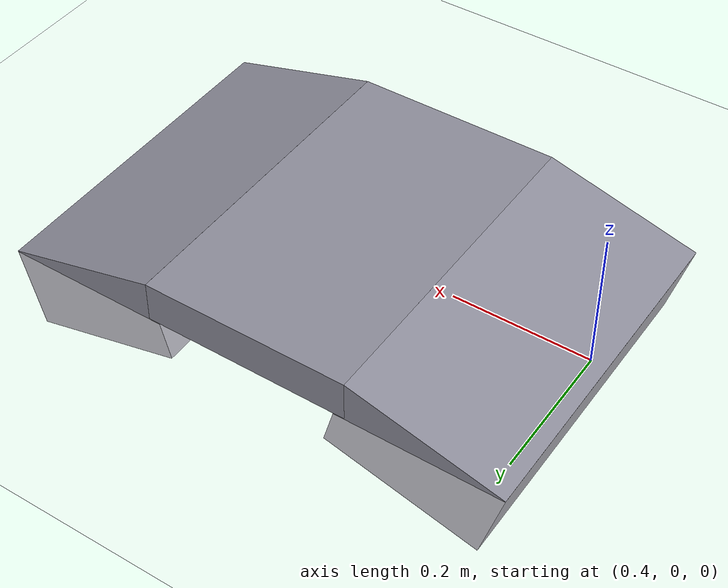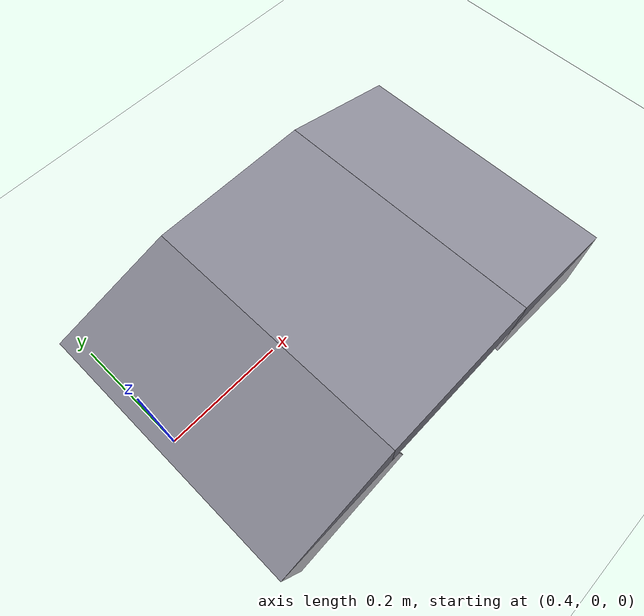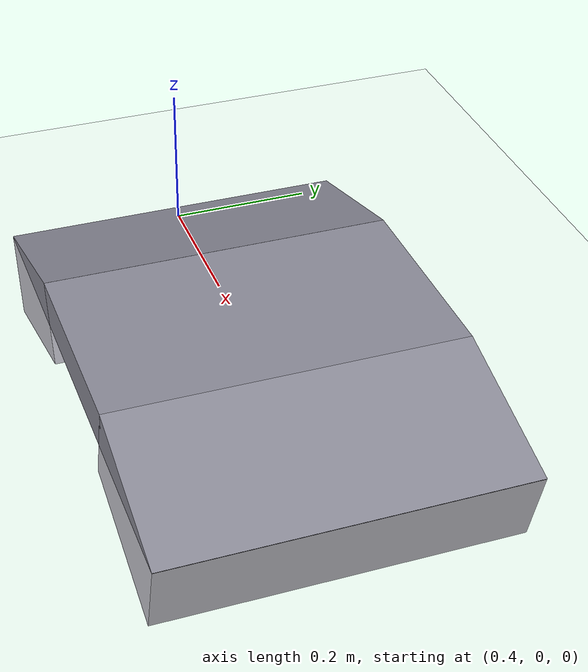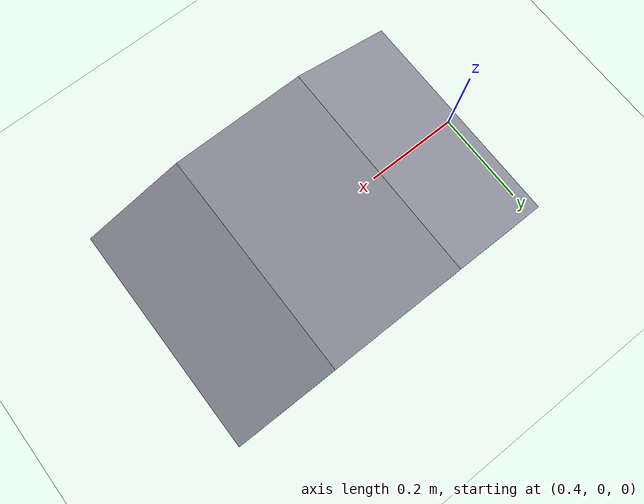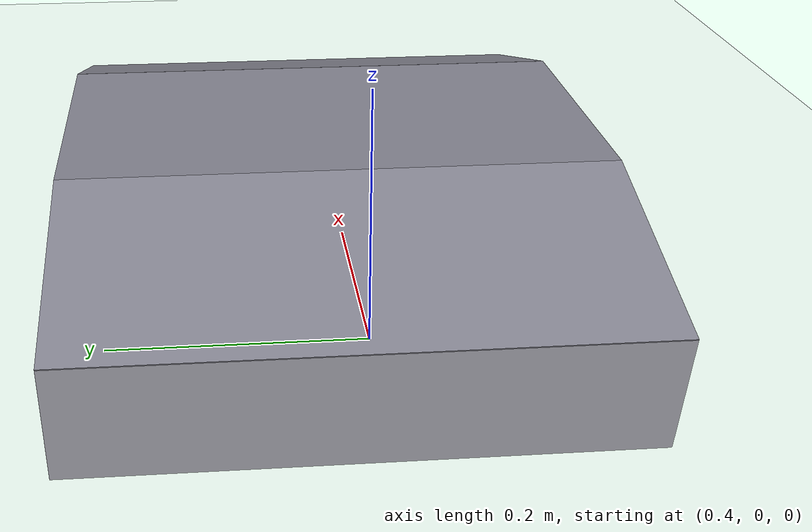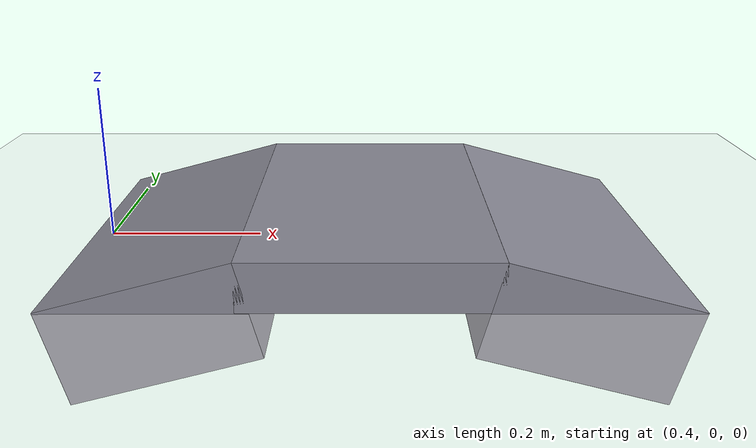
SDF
<?xml version="1.0"?>
<sdf version="1.9">
  <world name="empty">
    <physics name="default_physics" type="ignored">
      <max_step_size>0.001</max_step_size>
      <real_time_factor>1.0</real_time_factor>
    </physics>

    <plugin filename="gz-sim-physics-system" name="gz::sim::systems::Physics"/>
    <plugin filename="gz-sim-user-commands-system" name="gz::sim::systems::UserCommands"/>
    <plugin filename="gz-sim-scene-broadcaster-system" name="gz::sim::systems::SceneBroadcaster"/>
    <plugin filename="gz-sim-sensors-system" name="gz::sim::systems::Sensors">
      <render_engine>ogre2</render_engine>
    </plugin>
    <plugin filename="gz-sim-imu-system" name="gz::sim::systems::Imu"/>

    <light name="sun" type="directional">
      <pose>0 0 10 0 0 0</pose>
      <diffuse>0.8 0.8 0.8 1</diffuse>
      <specular>0.2 0.2 0.2 1</specular>
      <direction>-0.5 0.1 -0.9</direction>
    </light>

    <!-- 地面：车 spawn 在 z=0.03（轮子半径），四个轮子靠它托着 -->
    <model name="ground_plane">
      <static>true</static>
      <link name="link">
        <collision name="collision">
          <geometry>
            <plane>
              <normal>0 0 1</normal>
              <size>20 20</size>
            </plane>
          </geometry>
        </collision>
        <visual name="visual">
          <geometry>
            <plane>
              <normal>0 0 1</normal>
              <size>20 20</size>
            </plane>
          </geometry>
          <material>
            <ambient>1 1 1 1</ambient>
            <diffuse>1 1 1 1</diffuse>
            <specular>0.1 0.1 0.1 1</specular>
          </material>
        </visual>
      </link>
    </model>

    <model name="trapezoid">
      <static>true</static>
      <pose>0.75 0 0 0 0 0</pose>

      <!-- 顶面平台：60 mm 高，底面落在地面上 -->
      <link name="platform">
        <pose>0 0 0.03 0 0 0</pose>
        <collision name="collision">
          <geometry>
            <box>
              <size>0.30 0.50 0.06</size>
            </box>
          </geometry>
        </collision>
        <visual name="visual">
          <geometry>
            <box>
              <size>0.30 0.50 0.06</size>
            </box>
          </geometry>
          <material>
            <ambient>0.55 0.55 0.6 1</ambient>
            <diffuse>0.55 0.55 0.6 1</diffuse>
            <specular>0.1 0.1 0.1 1</specular>
          </material>
        </visual>
      </link>

      <!-- 上坡段（−x 侧，往 +x 爬）：长 232 mm（沿斜面）、厚 120 mm 埋一半 -->
      <link name="ramp_up">
        <pose>-0.24650 0 -0.02790 0 -0.26180 0</pose>
        <collision name="collision">
          <geometry>
            <box>
              <size>0.23189 0.50 0.12</size>
            </box>
          </geometry>
        </collision>
        <visual name="visual">
          <geometry>
            <box>
              <size>0.23189 0.50 0.12</size>
            </box>
          </geometry>
          <material>
            <ambient>0.55 0.55 0.6 1</ambient>
            <diffuse>0.55 0.55 0.6 1</diffuse>
            <specular>0.1 0.1 0.1 1</specular>
          </material>
        </visual>
      </link>

      <!-- 下坡段（+x 侧）：镜像 -->
      <link name="ramp_down">
        <pose>0.24650 0 -0.02790 0 0.26180 0</pose>
        <collision name="collision">
          <geometry>
            <box>
              <size>0.23189 0.50 0.12</size>
            </box>
          </geometry>
        </collision>
        <visual name="visual">
          <geometry>
            <box>
              <size>0.23189 0.50 0.12</size>
            </box>
          </geometry>
          <material>
            <ambient>0.55 0.55 0.6 1</ambient>
            <diffuse>0.55 0.55 0.6 1</diffuse>
            <specular>0.1 0.1 0.1 1</specular>
          </material>
        </visual>
      </link>
    </model>
  </world>
</sdf>
